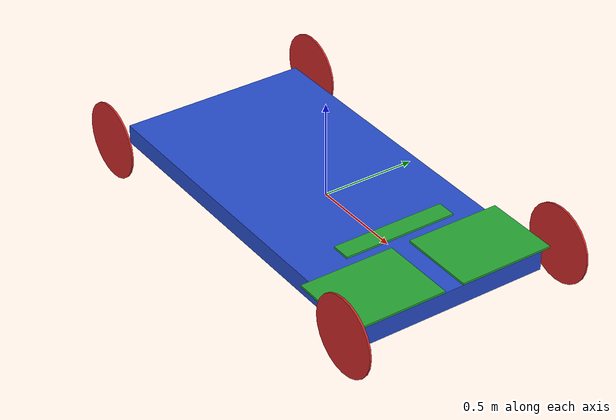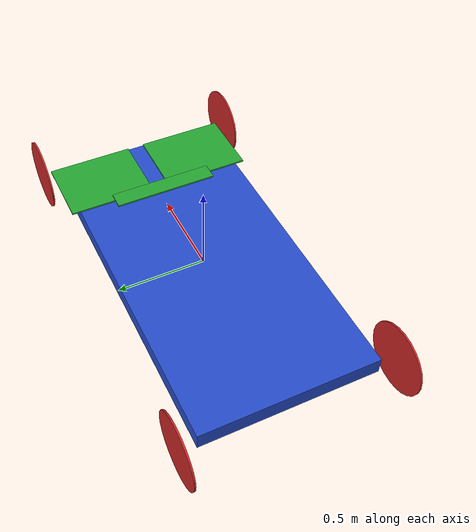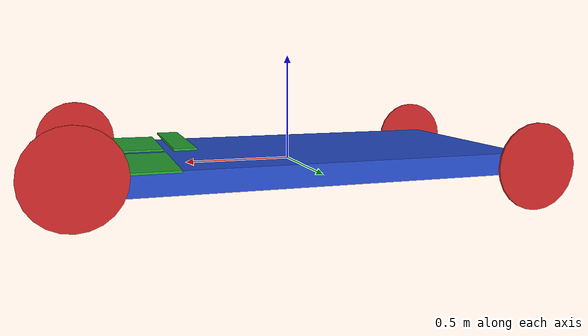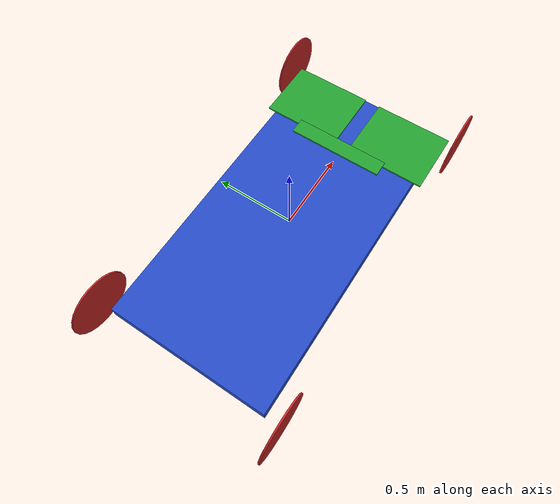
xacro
<?xml version="1.0"?>
<robot xmlns:xacro="http://www.ros.org/wiki/xacro"
    xmlns:gazebo="http://playerstage.sourceforge.net/gazebo/xmlschema/#gz"
    xmlns:model="http://playerstage.sourceforge.net/gazebo/xmlschema/#model"
    xmlns:sensor="http://playerstage.sourceforge.net/gazebo/xmlschema/#sensor"
    xmlns:body="http://playerstage.sourceforge.net/gazebo/xmlschema/#body"
    xmlns:geom="http://playerstage.sourceforge.net/gazebo/xmlschema/#geom"
    xmlns:joint="http://playerstage.sourceforge.net/gazebo/xmlschema/#joint"
    xmlns:controller="http://playerstage.sourceforge.net/gazebo/xmlschema/#controller"
    xmlns:interface="http://playerstage.sourceforge.net/gazebo/xmlschema/#interface"
    xmlns:rendering="http://playerstage.sourceforge.net/gazebo/xmlschema/#rendering"
    xmlns:physics="http://playerstage.sourceforge.net/gazebo/xmlschema/#physics" name="robot">
    <property name="M_PI" value="3.1415926535897931" />

    <link name="base">
        <inertial>
            <mass value="1.0" />
            <origin xyz="0 0 0" />
            <inertia ixx="1.0" ixy="0.0" ixz="0.0" iyy="1.0" iyz="0.0" izz="1.0" />
        </inertial>
        <visual>
            <origin xyz="0 0 0" rpy="0 0 0" />
            <geometry>
                <box size="2.0 1.0 0.1" />
            </geometry>
        </visual>
        <collision>
            <origin xyz="0 0 0" rpy="0 0 0" />
            <geometry>
                <box size="2.0 1.0 0.1" />
            </geometry>
        </collision>
    </link>
    <gazebo reference="base">
        <material>Gazebo/Blue</material>
        <turnGravityOff>false</turnGravityOff>
    </gazebo>

    <link name="front_left_bar">
        <inertial>
            <mass value="1.0" />
            <origin xyz="0 0 0" />
            <inertia ixx="1.0" ixy="0.0" ixz="0.0" iyy="1.0" iyz="0.0" izz="1.0" />
        </inertial>
        <visual>
            <origin xyz="-0.2 -0.2 0" rpy="0 0 0" />
            <geometry>
                <box size="0.4 0.5 0.01" />
            </geometry>
        </visual>
        <collision>
            <origin xyz="-0.2 -0.2 0" rpy="0 0 0" />
            <geometry>
                <box size="0.4 0.5 0.01" />
            </geometry>
        </collision>
    </link>
    <gazebo reference="front_left_bar">
        <material>Gazebo/Green</material>
        <turnGravityOff>false</turnGravityOff>
    </gazebo>
    <joint name="front_left_bar_joint" type="revolute">
        <limit lower="-0.2" upper="0.2" effort="100" velocity="10" />
        <axis xyz="0 0 1" />
        <parent link="base" />
        <child link="front_left_bar" />
        <origin xyz="1.0 0.5 0.055" rpy="0 0 0" />
    </joint>

    <link name="front_right_bar">
        <inertial>
            <mass value="1.0" />
            <origin xyz="0 0 0" />
            <inertia ixx="1.0" ixy="0.0" ixz="0.0" iyy="1.0" iyz="0.0" izz="1.0" />
        </inertial>
        <visual>
            <origin xyz="-0.2 0.2 0" rpy="0 0 0" />
            <geometry>
                <box size="0.4 0.5 0.01" />
            </geometry>
        </visual>
        <collision>
            <origin xyz="-0.2 0.2 0" rpy="0 0 0" />
            <geometry>
                <box size="0.4 0.5 0.01" />
            </geometry>
        </collision>
    </link>
    <gazebo reference="front_right_bar">
        <material>Gazebo/Green</material>
        <turnGravityOff>false</turnGravityOff>
    </gazebo>
    <joint name="front_right_bar_joint" type="revolute">
        <limit lower="-0.2" upper="0.2" effort="100" velocity="10" />
        <axis xyz="0 0 1" />
        <parent link="base" />
        <child link="front_right_bar" />
        <origin xyz="1.0 -0.5 0.055" rpy="0 0 0" />
    </joint>

    <link name="front_left_wheel">
        <inertial>
            <mass value="1.0" />
            <origin xyz="0 0 0" />
            <inertia ixx="1.0" ixy="0.0" ixz="0.0" iyy="1.0" iyz="0.0" izz="1.0" />
        </inertial>
        <visual>
            <origin xyz="0 0 0" rpy="${M_PI/2} 0 0" />
            <geometry>
                <cylinder radius="0.2" length="0.01" />
            </geometry>
        </visual>
        <collision>
            <origin xyz="0 0 0" rpy="${M_PI/2} 0 0" />
            <geometry>
                <cylinder radius="0.2" length="0.01" />
            </geometry>
        </collision>
    </link>
    <gazebo reference="front_left_wheel">
        <material>Gazebo/Red</material>
        <turnGravityOff>false</turnGravityOff>
    </gazebo>
    <joint name="front_left_wheel_joint" type="continuous">
        <axis xyz="0 1 0" />
        <parent link="front_left_bar" />
        <child link="front_left_wheel" />
        <origin xyz="0 0.1 0" rpy="0 0 0" />
    </joint>

    <link name="front_right_wheel">
        <inertial>
            <mass value="1.0" />
            <origin xyz="0 0 0" />
            <inertia ixx="1.0" ixy="0.0" ixz="0.0" iyy="1.0" iyz="0.0" izz="1.0" />
        </inertial>
        <visual>
            <origin xyz="0 0 0" rpy="${M_PI/2} 0 0" />
            <geometry>
                <cylinder radius="0.2" length="0.01" />
            </geometry>
        </visual>
        <collision>
            <origin xyz="0 0 0" rpy="${M_PI/2} 0 0" />
            <geometry>
                <cylinder radius="0.2" length="0.01" />
            </geometry>
        </collision>
    </link>
    <gazebo reference="front_right_wheel">
        <material>Gazebo/Red</material>
        <turnGravityOff>false</turnGravityOff>
    </gazebo>
    <joint name="front_right_wheel_joint" type="continuous">
        <axis xyz="0 1 0" />
        <parent link="front_right_bar" />
        <child link="front_right_wheel" />
        <origin xyz="0 -0.1 0" rpy="0 0 0" />
    </joint>

    <link name="ackermann_bar">
        <inertial>
            <mass value="1.0" />
            <origin xyz="0 0 0" />
            <inertia ixx="1.0" ixy="0.0" ixz="0.0" iyy="1.0" iyz="0.0" izz="1.0" />
        </inertial>
        <visual>
            <origin xyz="-0.05 -0.3 0" rpy="0 0 0" />
            <geometry>
                <box size="0.1 0.6 0.01" />
            </geometry>
        </visual>
        <collision>
            <origin xyz="-0.05 -0.3 0" rpy="0 0 0" />
            <geometry>
                <box size="0.1 0.6 0.01" />
            </geometry>
        </collision>
    </link>
    <gazebo reference="ackermann_bar">
        <material>Gazebo/Green</material>
        <turnGravityOff>false</turnGravityOff>
    </gazebo>
    <joint name="ackermann_bar_joint" type="continuous">
        <axis xyz="0 0 1" />
        <parent link="front_left_bar" />
        <child link="ackermann_bar" />
        <origin xyz="-0.4 -0.2 0.05" rpy="0 0 0" />
    </joint>

    <gazebo>
        <joint:hinge name="ackermann_bar_loop_joint">
            <body1>front_right_bar</body1>
            <body2>ackermann_bar</body2>
            <anchor>front_right_bar</anchor>
            <axis>0 0 1</axis>
            <anchorOffset>-0.4 0.2 0</anchorOffset>
        </joint:hinge>
    </gazebo>

    <link name="rear_left_wheel">
        <inertial>
            <mass value="1.0" />
            <origin xyz="0 0 0" />
            <inertia ixx="1.0" ixy="0.0" ixz="0.0" iyy="1.0" iyz="0.0" izz="1.0" />
        </inertial>
        <visual>
            <origin xyz="0 0 0" rpy="${M_PI/2} 0 0" />
            <geometry>
                <cylinder radius="0.2" length="0.01" />
            </geometry>
        </visual>
        <collision>
            <origin xyz="0 0 0" rpy="${M_PI/2} 0 0" />
            <geometry>
                <cylinder radius="0.2" length="0.01" />
            </geometry>
        </collision>
    </link>
    <gazebo reference="rear_left_wheel">
        <material>Gazebo/Red</material>
        <turnGravityOff>false</turnGravityOff>
    </gazebo>
    <joint name="rear_left_wheel_joint" type="continuous">
        <axis xyz="0 1 0" />
        <parent link="base" />
        <child link="rear_left_wheel" />
        <origin xyz="-1.0 0.6 0" rpy="0 0 0" />
    </joint>

    <link name="rear_right_wheel">
        <inertial>
            <mass value="1.0" />
            <origin xyz="0 0 0" />
            <inertia ixx="1.0" ixy="0.0" ixz="0.0" iyy="1.0" iyz="0.0" izz="1.0" />
        </inertial>
        <visual>
            <origin xyz="0 0 0" rpy="${M_PI/2} 0 0" />
            <geometry>
                <cylinder radius="0.2" length="0.01" />
            </geometry>
        </visual>
        <collision>
            <origin xyz="0 0 0" rpy="${M_PI/2} 0 0" />
            <geometry>
                <cylinder radius="0.2" length="0.01" />
            </geometry>
        </collision>
    </link>
    <gazebo reference="rear_right_wheel">
        <material>Gazebo/Red</material>
        <turnGravityOff>false</turnGravityOff>
    </gazebo>
    <joint name="rear_right_wheel_joint" type="continuous">
        <axis xyz="0 1 0" />
        <parent link="base" />
        <child link="rear_right_wheel" />
        <origin xyz="-1.0 -0.6 0" rpy="0 0 0" />
    </joint>
</robot>

<!-- World link to steerlinkage  -->
<joint name="steerlinkage_joint" type="prismatic">
    <parent link="world" />
    <child link="steerlinkage" />
</joint>

<link name="steerlinkage"></link>

<!-- steerlinkage link to leftsteerjoint -->
<joint name="leftsteerjoint" type="revolute">
    <parent link="steerlinkage" />
    <child link="leftsteerlink" />
</joint>
<link name="leftsteerlink"></link>

<!-- leftsteerlink link to leftsteerwheeljoint -->
<joint name="leftsteerwheeljoint" type="continuous">
    <parent link="leftsteerjoint" />
    <child link="front_left_wheel_link" />
</joint>
<link name="front_left_wheel_link"></link>
